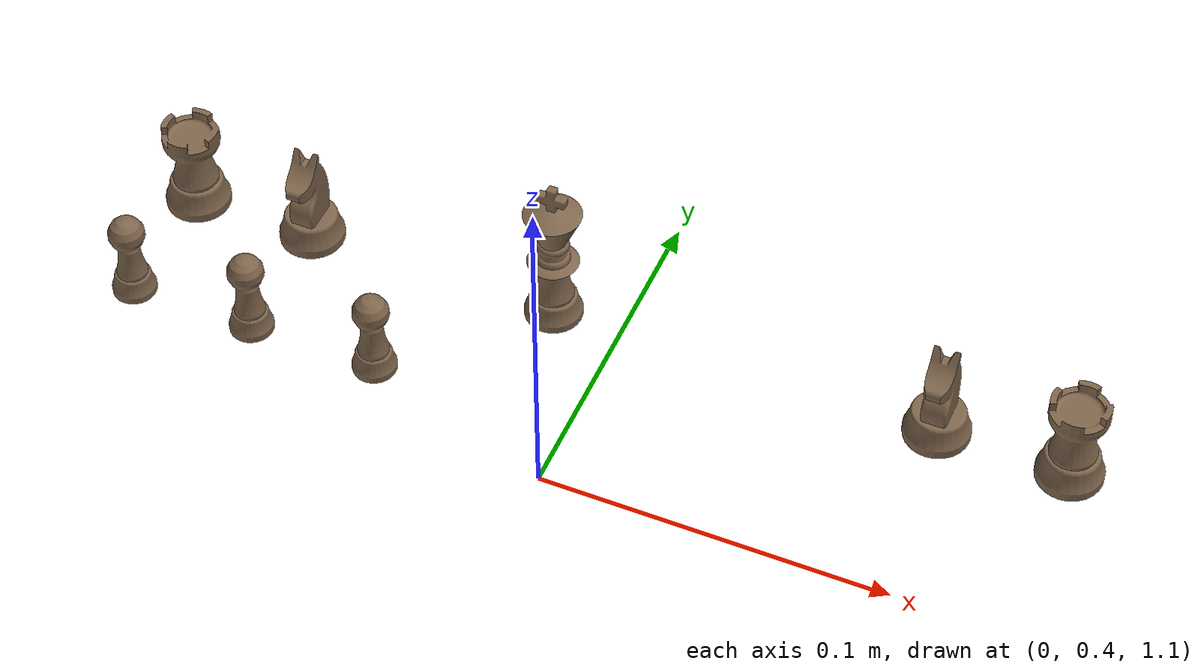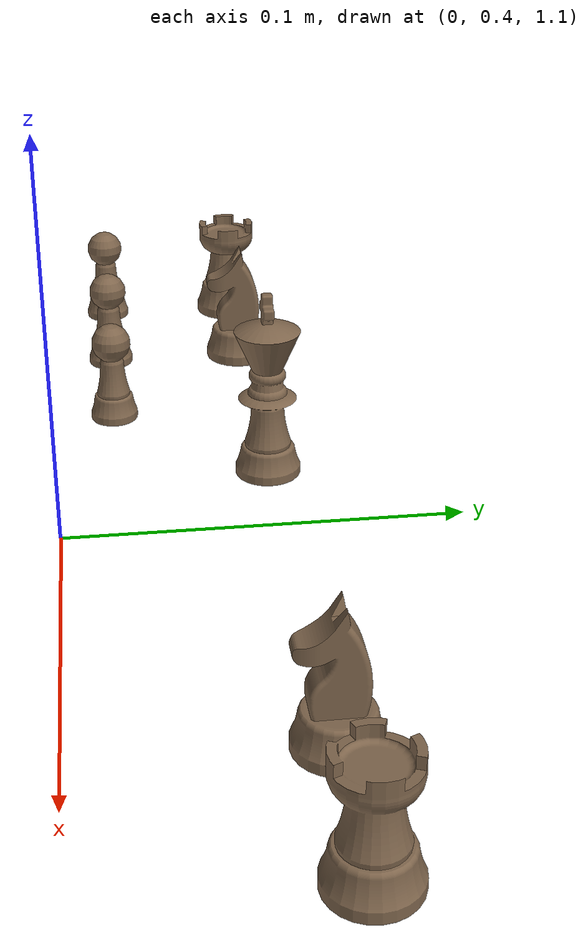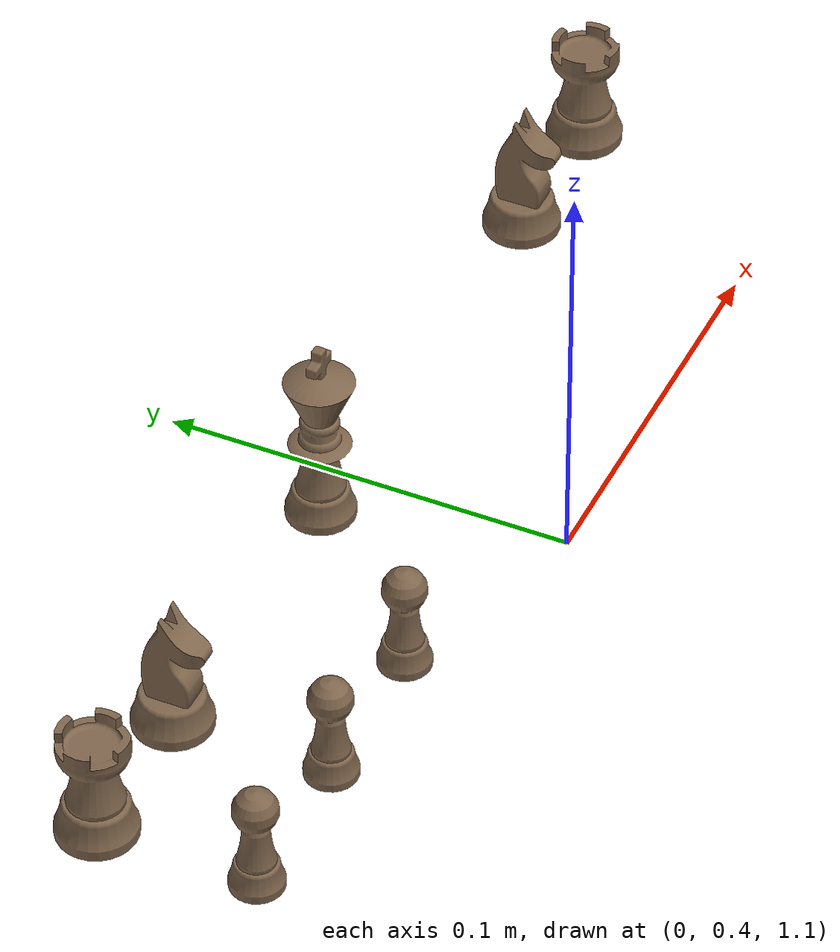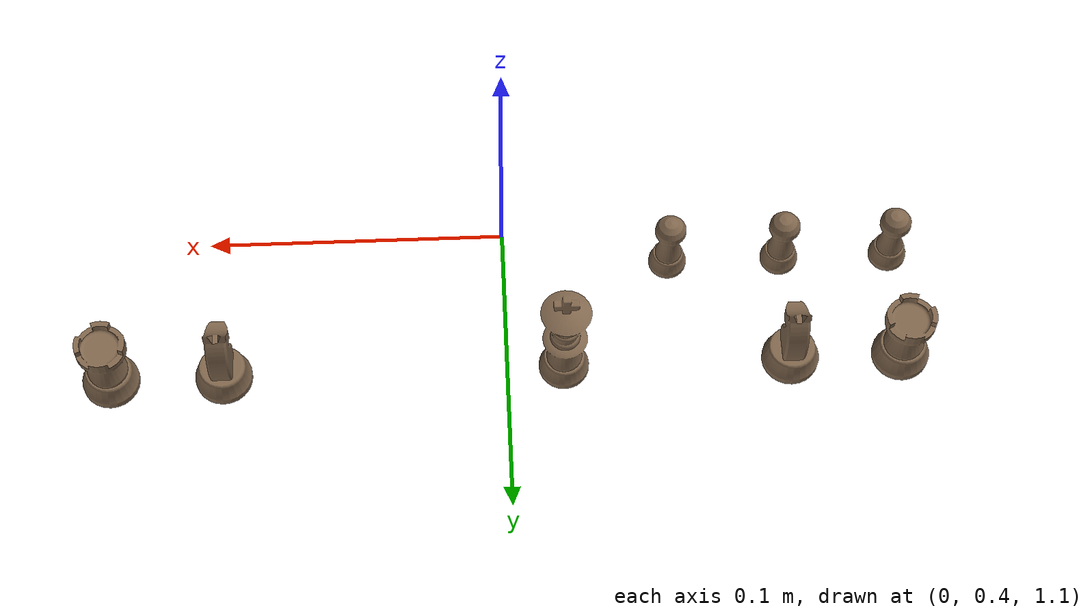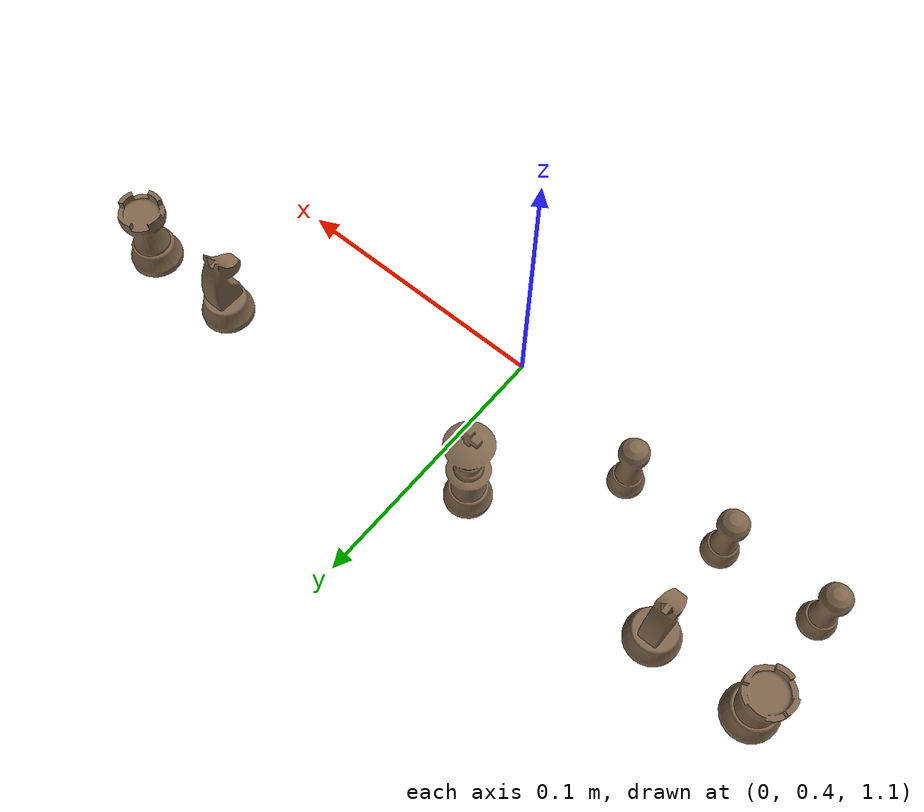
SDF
<sdf version="1.6">
 <world name="default">
  <model name="ground_plane">
   <static>1</static>
   <link name="link">
    <collision name="collision">
     <geometry><plane><normal>0 0 1</normal><size>100 100</size></plane></geometry>
     <surface>
      <contact><collide_bitmask>65535</collide_bitmask></contact>
      <friction><ode><mu>100</mu><mu2>50</mu2></ode></friction>
     </surface>
    </collision>
    <visual name="visual">
     <cast_shadows>0</cast_shadows>
     <geometry><plane><normal>0 0 1</normal><size>100 100</size></plane></geometry>
     <material>
      <script><uri>file://media/materials/scripts/gazebo.material</uri><name>Gazebo/Grey</name></script>
     </material>
    </visual>
   </link>
  </model>
  <model name="pawn_white5">
   <static>0</static>
   <link name="link_0">
    <inertial>
     <mass>0.01</mass>
     <inertia><ixx>1e-06</ixx><ixy>0</ixy><ixz>0</ixz><iyy>1e-06</iyy><iyz>0</iyz><izz>5e-07</izz></inertia>
    </inertial>
    <kinematic>1</kinematic>
    <visual name="visual">
     <geometry><mesh><uri>model://pawn_white/meshes/pawn.dae</uri><scale>1 1 1</scale></mesh></geometry>
     <material>
      <lighting>1</lighting>
      <script><uri>file://media/materials/scripts/gazebo.material</uri><name>Gazebo/Grey</name></script>
      <shader type="vertex"><normal_map>__default__</normal_map></shader>
      <ambient>1 0.894 0.71 1</ambient>
      <diffuse>0.5 0.4 0.3 1</diffuse>
      <specular>0.01 0.01 0.01 1</specular>
      <emissive>0 0 0 1</emissive>
     </material>
    </visual>
    <collision name="collision">
     <pose>0 0 0.015 0 -0 0</pose>
     <geometry><cylinder><radius>0.01</radius><length>0.03</length></cylinder></geometry>
     <surface>
      <friction><ode><mu>1</mu><mu2>1</mu2></ode></friction>
      <contact><ode><kp>1e+07</kp><kd>1</kd><max_vel>0.001</max_vel><min_depth>0.1</min_depth></ode></contact>
     </surface>
    </collision>
    <pose>-0.056 0.415 1.105 0 -0 0</pose>
   </link>
  </model>
  <model name="pawn_white6">
   <static>0</static>
   <link name="link_0">
    <inertial>
     <mass>0.01</mass>
     <inertia><ixx>1e-06</ixx><ixy>0</ixy><ixz>0</ixz><iyy>1e-06</iyy><iyz>0</iyz><izz>5e-07</izz></inertia>
    </inertial>
    <kinematic>1</kinematic>
    <visual name="visual">
     <geometry><mesh><uri>model://pawn_white/meshes/pawn.dae</uri><scale>1 1 1</scale></mesh></geometry>
     <material>
      <lighting>1</lighting>
      <script><uri>file://media/materials/scripts/gazebo.material</uri><name>Gazebo/Grey</name></script>
      <shader type="vertex"><normal_map>__default__</normal_map></shader>
      <ambient>1 0.894 0.71 1</ambient>
      <diffuse>0.5 0.4 0.3 1</diffuse>
      <specular>0.01 0.01 0.01 1</specular>
      <emissive>0 0 0 1</emissive>
     </material>
    </visual>
    <collision name="collision">
     <pose>0 0 0.015 0 -0 0</pose>
     <geometry><cylinder><radius>0.01</radius><length>0.03</length></cylinder></geometry>
     <surface>
      <friction><ode><mu>1</mu><mu2>1</mu2></ode></friction>
      <contact><ode><kp>1e+07</kp><kd>1</kd><max_vel>0.001</max_vel><min_depth>0.1</min_depth></ode></contact>
     </surface>
    </collision>
    <pose>-0.094 0.415 1.105 0 -0 0</pose>
   </link>
  </model>
  <model name="pawn_white7">
   <static>0</static>
   <link name="link_0">
    <inertial>
     <mass>0.01</mass>
     <inertia><ixx>1e-06</ixx><ixy>0</ixy><ixz>0</ixz><iyy>1e-06</iyy><iyz>0</iyz><izz>5e-07</izz></inertia>
    </inertial>
    <kinematic>1</kinematic>
    <visual name="visual">
     <geometry><mesh><uri>model://pawn_white/meshes/pawn.dae</uri><scale>1 1 1</scale></mesh></geometry>
     <material>
      <lighting>1</lighting>
      <script><uri>file://media/materials/scripts/gazebo.material</uri><name>Gazebo/Grey</name></script>
      <shader type="vertex"><normal_map>__default__</normal_map></shader>
      <ambient>1 0.894 0.71 1</ambient>
      <diffuse>0.5 0.4 0.3 1</diffuse>
      <specular>0.01 0.01 0.01 1</specular>
      <emissive>0 0 0 1</emissive>
     </material>
    </visual>
    <collision name="collision">
     <pose>0 0 0.015 0 -0 0</pose>
     <geometry><cylinder><radius>0.01</radius><length>0.03</length></cylinder></geometry>
     <surface>
      <friction><ode><mu>1</mu><mu2>1</mu2></ode></friction>
      <contact><ode><kp>1e+07</kp><kd>1</kd><max_vel>0.001</max_vel><min_depth>0.1</min_depth></ode></contact>
     </surface>
    </collision>
    <pose>-0.131 0.415 1.105 0 -0 0</pose>
   </link>
  </model>
  <model name="rook_white0">
   <static>0</static>
   <link name="link_0">
    <inertial>
     <mass>0.01</mass>
     <inertia><ixx>1e-06</ixx><ixy>0</ixy><ixz>0</ixz><iyy>1e-06</iyy><iyz>0</iyz><izz>5e-07</izz></inertia>
    </inertial>
    <kinematic>1</kinematic>
    <visual name="visual">
     <geometry><mesh><uri>model://rook_white/meshes/rook.dae</uri><scale>1 1 1</scale></mesh></geometry>
     <material>
      <lighting>1</lighting>
      <script><uri>file://media/materials/scripts/gazebo.material</uri><name>Gazebo/Grey</name></script>
      <shader type="vertex"><normal_map>__default__</normal_map></shader>
      <ambient>1 0.894 0.71 1</ambient>
      <diffuse>0.5 0.4 0.3 1</diffuse>
      <specular>0.01 0.01 0.01 1</specular>
      <emissive>0 0 0 1</emissive>
     </material>
    </visual>
    <collision name="collision">
     <pose>0 0 0.015 0 -0 0</pose>
     <geometry><cylinder><radius>0.01</radius><length>0.03</length></cylinder></geometry>
     <surface>
      <friction><ode><mu>1</mu><mu2>1</mu2></ode></friction>
      <contact><ode><kp>1e+07</kp><kd>1</kd><max_vel>0.001</max_vel><min_depth>0.1</min_depth></ode></contact>
     </surface>
    </collision>
    <pose>0.131 0.453 1.105 0 -0 0</pose>
   </link>
  </model>
  <model name="rook_white1">
   <static>0</static>
   <link name="link_0">
    <inertial>
     <mass>0.01</mass>
     <inertia><ixx>1e-06</ixx><ixy>0</ixy><ixz>0</ixz><iyy>1e-06</iyy><iyz>0</iyz><izz>5e-07</izz></inertia>
    </inertial>
    <kinematic>1</kinematic>
    <visual name="visual">
     <geometry><mesh><uri>model://rook_white/meshes/rook.dae</uri><scale>1 1 1</scale></mesh></geometry>
     <material>
      <lighting>1</lighting>
      <script><uri>file://media/materials/scripts/gazebo.material</uri><name>Gazebo/Grey</name></script>
      <shader type="vertex"><normal_map>__default__</normal_map></shader>
      <ambient>1 0.894 0.71 1</ambient>
      <diffuse>0.5 0.4 0.3 1</diffuse>
      <specular>0.01 0.01 0.01 1</specular>
      <emissive>0 0 0 1</emissive>
     </material>
    </visual>
    <collision name="collision">
     <pose>0 0 0.015 0 -0 0</pose>
     <geometry><cylinder><radius>0.01</radius><length>0.03</length></cylinder></geometry>
     <surface>
      <friction><ode><mu>1</mu><mu2>1</mu2></ode></friction>
      <contact><ode><kp>1e+07</kp><kd>1</kd><max_vel>0.001</max_vel><min_depth>0.1</min_depth></ode></contact>
     </surface>
    </collision>
    <pose>-0.131 0.453 1.105 0 -0 0</pose>
   </link>
  </model>
  <model name="knight_white0">
   <static>0</static>
   <link name="link_0">
    <inertial>
     <mass>0.01</mass>
     <inertia><ixx>1e-06</ixx><ixy>0</ixy><ixz>0</ixz><iyy>1e-06</iyy><iyz>0</iyz><izz>5e-07</izz></inertia>
    </inertial>
    <kinematic>1</kinematic>
    <visual name="visual">
     <geometry><mesh><uri>model://knight_white/meshes/knight.dae</uri><scale>1 1 1</scale></mesh></geometry>
     <material>
      <lighting>1</lighting>
      <script><uri>file://media/materials/scripts/gazebo.material</uri><name>Gazebo/Grey</name></script>
      <shader type="vertex"><normal_map>__default__</normal_map></shader>
      <ambient>1 0.894 0.71 1</ambient>
      <diffuse>0.5 0.4 0.3 1</diffuse>
      <specular>0.01 0.01 0.01 1</specular>
      <emissive>0 0 0 1</emissive>
     </material>
    </visual>
    <collision name="collision">
     <pose>0 0 0.015 0 -0 0</pose>
     <geometry><cylinder><radius>0.01</radius><length>0.03</length></cylinder></geometry>
     <surface>
      <friction><ode><mu>1</mu><mu2>1</mu2></ode></friction>
      <contact><ode><kp>1e+07</kp><kd>1</kd><max_vel>0.001</max_vel><min_depth>0.1</min_depth></ode></contact>
     </surface>
    </collision>
    <pose>0.094 0.453 1.105 0 -0 0</pose>
   </link>
  </model>
  <model name="knight_white1">
   <static>0</static>
   <link name="link_0">
    <inertial>
     <mass>0.01</mass>
     <inertia><ixx>1e-06</ixx><ixy>0</ixy><ixz>0</ixz><iyy>1e-06</iyy><iyz>0</iyz><izz>5e-07</izz></inertia>
    </inertial>
    <kinematic>1</kinematic>
    <visual name="visual">
     <geometry><mesh><uri>model://knight_white/meshes/knight.dae</uri><scale>1 1 1</scale></mesh></geometry>
     <material>
      <lighting>1</lighting>
      <script><uri>file://media/materials/scripts/gazebo.material</uri><name>Gazebo/Grey</name></script>
      <shader type="vertex"><normal_map>__default__</normal_map></shader>
      <ambient>1 0.894 0.71 1</ambient>
      <diffuse>0.5 0.4 0.3 1</diffuse>
      <specular>0.01 0.01 0.01 1</specular>
      <emissive>0 0 0 1</emissive>
     </material>
    </visual>
    <collision name="collision">
     <pose>0 0 0.015 0 -0 0</pose>
     <geometry><cylinder><radius>0.01</radius><length>0.03</length></cylinder></geometry>
     <surface>
      <friction><ode><mu>1</mu><mu2>1</mu2></ode></friction>
      <contact><ode><kp>1e+07</kp><kd>1</kd><max_vel>0.001</max_vel><min_depth>0.1</min_depth></ode></contact>
     </surface>
    </collision>
    <pose>-0.094 0.453 1.105 0 -0 0</pose>
   </link>
  </model>
  <model name="king_white0">
   <static>0</static>
   <link name="link_0">
    <inertial>
     <mass>0.01</mass>
     <inertia><ixx>1e-06</ixx><ixy>0</ixy><ixz>0</ixz><iyy>1e-06</iyy><iyz>0</iyz><izz>5e-07</izz></inertia>
    </inertial>
    <kinematic>1</kinematic>
    <visual name="visual">
     <geometry><mesh><uri>model://king_white/meshes/king.dae</uri><scale>1 1 1</scale></mesh></geometry>
     <material>
      <lighting>1</lighting>
      <script><uri>file://media/materials/scripts/gazebo.material</uri><name>Gazebo/Grey</name></script>
      <shader type="vertex"><normal_map>__default__</normal_map></shader>
      <ambient>1 0.894 0.71 1</ambient>
      <diffuse>0.5 0.4 0.3 1</diffuse>
      <specular>0.01 0.01 0.01 1</specular>
      <emissive>0 0 0 1</emissive>
     </material>
    </visual>
    <collision name="collision">
     <pose>0 0 0.015 0 -0 0</pose>
     <geometry><cylinder><radius>0.01</radius><length>0.03</length></cylinder></geometry>
     <surface>
      <friction><ode><mu>1</mu><mu2>1</mu2></ode></friction>
      <contact><ode><kp>1e+07</kp><kd>1</kd><max_vel>0.001</max_vel><min_depth>0.1</min_depth></ode></contact>
     </surface>
    </collision>
    <pose>-0.019 0.453 1.105 0 -0 0</pose>
   </link>
  </model>
 </world>
</sdf>
